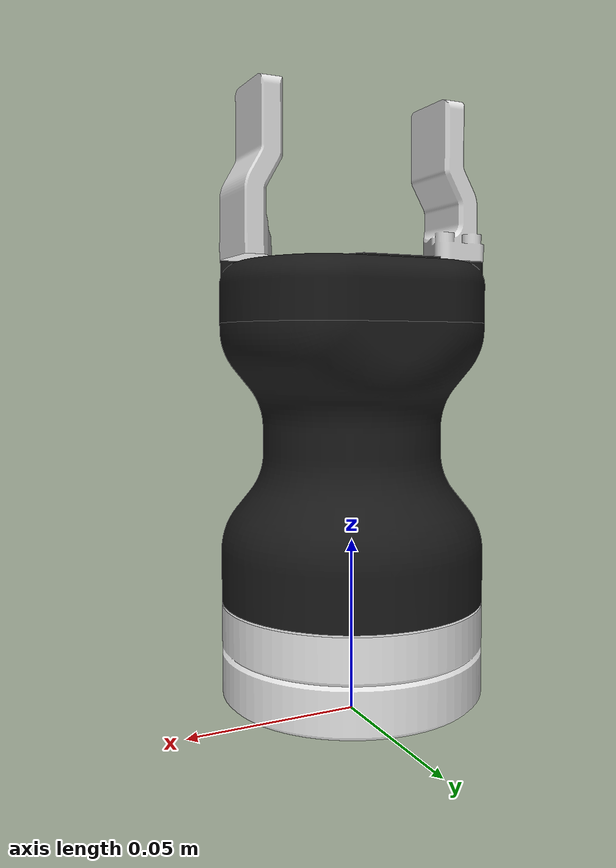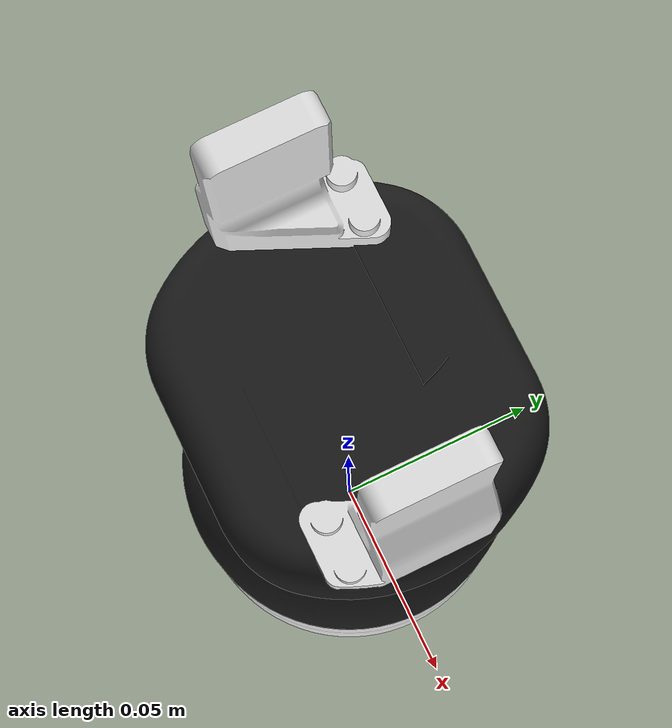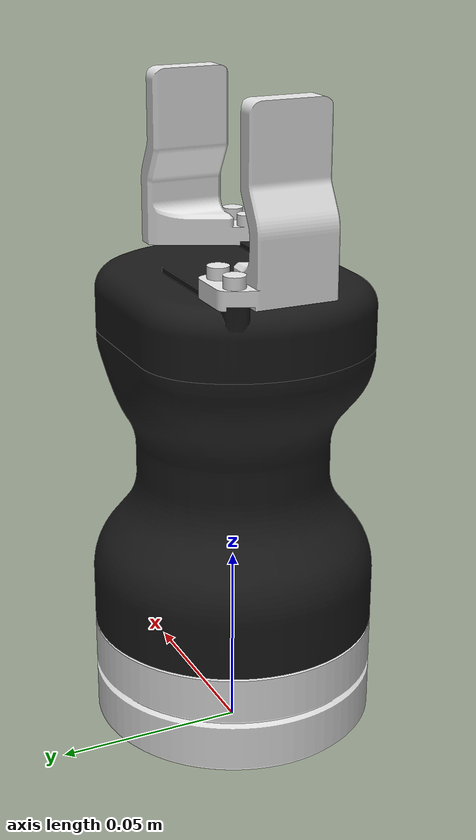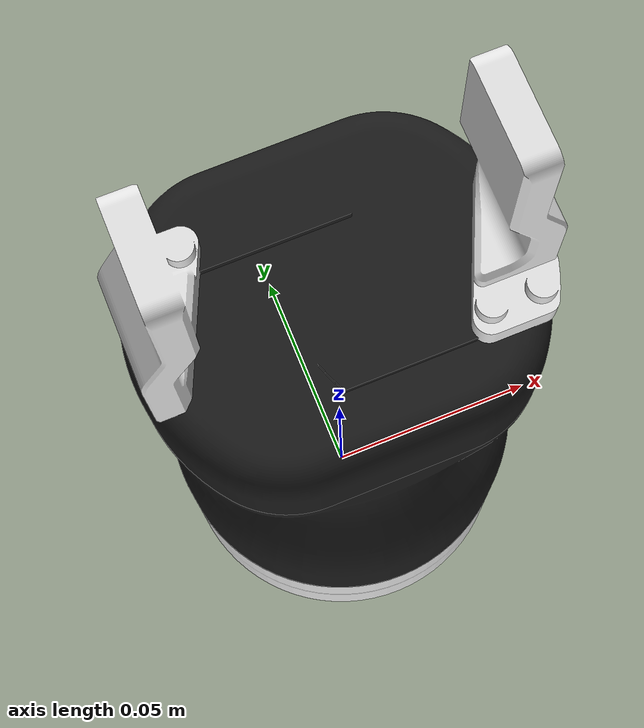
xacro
<?xml version="1.0" ?>
<robot name="za" xmlns:xacro="http://www.ros.org/wiki/xacro">
  <xacro:arg name="prefix" default=""/>
  <xacro:include filename="$(find za_description)/urdf/robotiq_hand_e_macro.xacro"/>
  <xacro:robotiq_hand_e_macro prefix="$(arg prefix)"/>

  <!-- 'flange' frame: default pose reference frame -->
  <link name="flange" />
  <joint name="flange-$(arg prefix)za_robotiq_adapter" type="fixed">
    <origin xyz="0 0 0" rpy="0 0 0"/>
    <axis xyz="0 0 1"/>
    <parent link="flange"/>
    <child link="$(arg prefix)za_robotiq_adapter"/>
  </joint>
</robot>

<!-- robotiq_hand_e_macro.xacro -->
<robot xmlns:xacro="http://www.ros.org/wiki/xacro">
  <xacro:macro name="robotiq_hand_e_macro" params="prefix">

    <material name="${prefix}Aluminium">
      <color rgba="0.9 0.9 0.9 0.99"/>
    </material>

    <material name="${prefix}Black">
      <color rgba="0.1 0.1 0.1 0.99"/>
    </material>

    <!-- link list -->
    <link name="${prefix}za_robotiq_adapter">
      <visual>
        <geometry>
          <mesh filename="package://za_description/meshes/adapter_za_robotiq.stl"/>
        </geometry>
        <origin rpy="0.0 0.0 0.0" xyz="0 0 0"/>
        <material name="${prefix}Aluminium">
        </material>
      </visual>
      <collision>
        <geometry>
          <mesh filename="package://za_description/meshes/adapter_za_robotiq.stl"/>
        </geometry>
        <origin rpy="0.0 0.0 0.0" xyz="0 0 0"/>
      </collision>
    </link>

    <link name="${prefix}hand_e_base">
      <visual>
        <geometry>
          <mesh filename="package://za_description/meshes/robotiq_hand_e_base.stl"/>
        </geometry>
        <origin rpy="0.0 0.0 0.0" xyz="0 0 0"/>
        <material name="${prefix}Black">
        </material>
      </visual>
      <collision>
        <geometry>
          <mesh filename="package://za_description/meshes/robotiq_hand_e_base.stl"/>
        </geometry>
        <origin rpy="0.0 0.0 0.0" xyz="0 0 0"/>
      </collision>
      <inertial>
        <mass value="100"/>
        <inertia ixx="1.0" ixy="0.0" ixz="0.0" iyy="1.0" iyz="0.0" izz="1.0"/>
      </inertial>
    </link>

    <link name="${prefix}hand_e_top">
      <visual>
        <geometry>
          <mesh filename="package://za_description/meshes/robotiq_hand_e_top.stl"/>
        </geometry>
        <origin rpy="0.0 0.0 0.0" xyz="0 0 0"/>
        <material name="${prefix}Black">
        </material>
      </visual>
      <collision>
        <geometry>
          <mesh filename="package://za_description/meshes/robotiq_hand_e_top.stl"/>
        </geometry>
        <origin rpy="0.0 0.0 0.0" xyz="0 0 0"/>
      </collision>
      <inertial>
        <mass value="100"/>
        <inertia ixx="1.0" ixy="0.0" ixz="0.0" iyy="1.0" iyz="0.0" izz="1.0"/>
      </inertial>
    </link>

    <link name="${prefix}hand_e_gripper1">
      <visual>
        <geometry>
          <mesh filename="package://za_description/meshes/robotiq_hand_e_gripper1.stl"/>
        </geometry>
        <origin rpy="0.0 0.0 0.0" xyz="0.0 0.0 0.0"/>
        <material name="${prefix}Aluminium">
        </material>
      </visual>
      <collision>
        <geometry>
          <mesh filename="package://za_description/meshes/robotiq_hand_e_gripper1.stl"/>
        </geometry>
        <origin rpy="0.0 0.0 0.0" xyz="0.0 0.0 0.0"/>
      </collision>
      <inertial>
        <mass value="100"/>
        <inertia ixx="1.0" ixy="0.0" ixz="0.0" iyy="1.0" iyz="0.0" izz="1.0"/>
      </inertial>
    </link>

    <link name="${prefix}hand_e_gripper2">
      <visual>
        <geometry>
          <mesh filename="package://za_description/meshes/robotiq_hand_e_gripper2.stl"/>
        </geometry>
        <origin rpy="0.0 0.0 0.0" xyz="0.0 0.0 0.0"/>
        <material name="${prefix}Aluminium">
        </material>
      </visual>
      <collision>
        <geometry>
          <mesh filename="package://za_description/meshes/robotiq_hand_e_gripper2.stl"/>
        </geometry>
        <origin rpy="0.0 0.0 0.0" xyz="0.0 0.0 0.0"/>
      </collision>
      <inertial>
        <mass value="100"/>
        <inertia ixx="1.0" ixy="0.0" ixz="0.0" iyy="1.0" iyz="0.0" izz="1.0"/>
      </inertial>
    </link>

    <!-- joint list -->
    <joint name="${prefix}adapter_hand_e_base" type="fixed">
      <parent link="${prefix}za_robotiq_adapter"/>
      <child link="${prefix}hand_e_base"/>
      <axis xyz="0 0 0"/>
      <origin rpy="0.0 0.0 0.0" xyz="0 0 0.0305"/>
    </joint>

    <joint name="${prefix}hand_e_base_top" type="fixed">
      <parent link="${prefix}hand_e_base"/>
      <child link="${prefix}hand_e_top"/>
      <axis xyz="0 0 0"/>
      <origin rpy="0.0 0.0 0.0" xyz="0 0 0.082"/>
    </joint>

    <joint name="${prefix}hand_e_top_gripper1" type="fixed">
      <parent link="${prefix}hand_e_top"/>
      <child link="${prefix}hand_e_gripper1"/>
      <axis xyz="0 0 0"/>
      <origin rpy="0.0 0.0 0.0" xyz="0.025 0 0.064"/>
    </joint>

    <joint name="${prefix}hand_e_top_gripper2" type="fixed">
      <parent link="${prefix}hand_e_top"/>
      <child link="${prefix}hand_e_gripper2"/>
      <axis xyz="0 0 0"/>
      <origin rpy="0.0 0.0 0.0" xyz="-0.025 0 0.064"/>
    </joint>
  </xacro:macro>
</robot>
